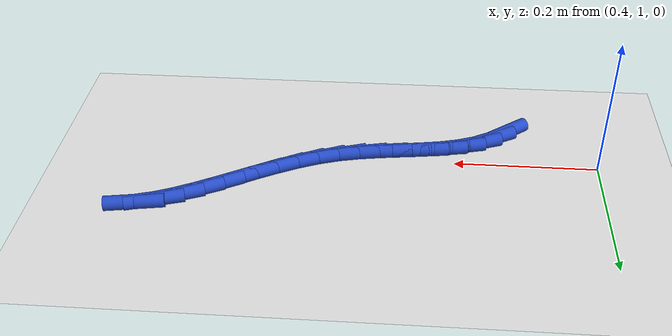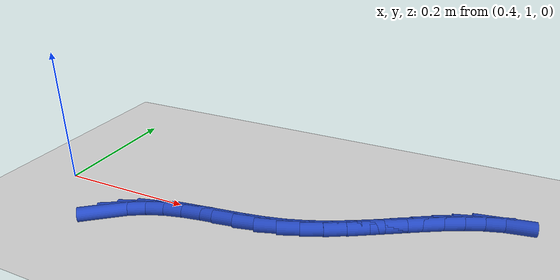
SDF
<sdf version="1.6">
 <world name="default">
  <model name="ground_plane">
   <static>1</static>
   <link name="link">
    <collision name="collision">
     <geometry><plane><normal>0 0 1</normal><size>100 100</size></plane></geometry>
     <surface><friction><ode><mu>100</mu><mu2>50</mu2></ode></friction></surface>
    </collision>
    <visual name="visual">
     <cast_shadows>0</cast_shadows>
     <geometry><plane><normal>0 0 1</normal><size>100 100</size></plane></geometry>
     <material>
      <script><uri>file://media/materials/scripts/gazebo.material</uri><name>Gazebo/WhiteGlow</name></script>
     </material>
    </visual>
   </link>
  </model>
  <model name="line">
   <link name="link_39">
    <pose>0.5282742211020827 0.9340241092727407 0.01 0 1.57 0.6616137770099053</pose>
    <collision name="collision">
     <geometry><cylinder><radius>0.01</radius><length>0.08</length></cylinder></geometry>
    </collision>
    <visual name="visual">
     <material>
      <script><name>Gazebo/Blue</name><uri>file://media/materials/scripts/gazebo.material</uri></script>
     </material>
     <geometry><cylinder><radius>0.01</radius><length>0.08</length></cylinder></geometry>
    </visual>
   </link>
   <link name="link_40">
    <pose>0.5486551541093719 0.949894619017821 0.01 0 1.57 0.5128230388341847</pose>
    <collision name="collision">
     <geometry><cylinder><radius>0.01</radius><length>0.08</length></cylinder></geometry>
    </collision>
    <visual name="visual">
     <material>
      <script><name>Gazebo/Blue</name><uri>file://media/materials/scripts/gazebo.material</uri></script>
     </material>
     <geometry><cylinder><radius>0.01</radius><length>0.08</length></cylinder></geometry>
    </visual>
   </link>
   <link name="link_41">
    <pose>0.5709427631343595 0.9624441231962502 0.01 0 1.57 0.3589645401083616</pose>
    <collision name="collision">
     <geometry><cylinder><radius>0.01</radius><length>0.08</length></cylinder></geometry>
    </collision>
    <visual name="visual">
     <material>
      <script><name>Gazebo/Blue</name><uri>file://media/materials/scripts/gazebo.material</uri></script>
     </material>
     <geometry><cylinder><radius>0.01</radius><length>0.08</length></cylinder></geometry>
    </visual>
   </link>
   <link name="link_42">
    <pose>0.5952317053174303 0.9715578479868802 0.01 0 1.57 0.24285056643595912</pose>
    <collision name="collision">
     <geometry><cylinder><radius>0.01</radius><length>0.08</length></cylinder></geometry>
    </collision>
    <visual name="visual">
     <material>
      <script><name>Gazebo/Blue</name><uri>file://media/materials/scripts/gazebo.material</uri></script>
     </material>
     <geometry><cylinder><radius>0.01</radius><length>0.08</length></cylinder></geometry>
    </visual>
   </link>
   <link name="link_43">
    <pose>0.6212062965085824 0.9779927957067559 0.01 0 1.57 0.16911727179858327</pose>
    <collision name="collision">
     <geometry><cylinder><radius>0.01</radius><length>0.08</length></cylinder></geometry>
    </collision>
    <visual name="visual">
     <material>
      <script><name>Gazebo/Blue</name><uri>file://media/materials/scripts/gazebo.material</uri></script>
     </material>
     <geometry><cylinder><radius>0.01</radius><length>0.08</length></cylinder></geometry>
    </visual>
   </link>
   <link name="link_44">
    <pose>0.6484829469061665 0.9826502352338055 0.01 0 1.57 0.1333129068355688</pose>
    <collision name="collision">
     <geometry><cylinder><radius>0.01</radius><length>0.08</length></cylinder></geometry>
    </collision>
    <visual name="visual">
     <material>
      <script><name>Gazebo/Blue</name><uri>file://media/materials/scripts/gazebo.material</uri></script>
     </material>
     <geometry><cylinder><radius>0.01</radius><length>0.08</length></cylinder></geometry>
    </visual>
   </link>
   <link name="link_45">
    <pose>0.6766780667085345 0.9864314354459578 0.01 0 1.57 0.1317157286446269</pose>
    <collision name="collision">
     <geometry><cylinder><radius>0.01</radius><length>0.08</length></cylinder></geometry>
    </collision>
    <visual name="visual">
     <material>
      <script><name>Gazebo/Blue</name><uri>file://media/materials/scripts/gazebo.material</uri></script>
     </material>
     <geometry><cylinder><radius>0.01</radius><length>0.08</length></cylinder></geometry>
    </visual>
   </link>
   <link name="link_46">
    <pose>0.7054080661140368 0.9902376652211419 0.01 0 1.57 0.16241798433288324</pose>
    <collision name="collision">
     <geometry><cylinder><radius>0.01</radius><length>0.08</length></cylinder></geometry>
    </collision>
    <visual name="visual">
     <material>
      <script><name>Gazebo/Blue</name><uri>file://media/materials/scripts/gazebo.material</uri></script>
     </material>
     <geometry><cylinder><radius>0.01</radius><length>0.08</length></cylinder></geometry>
    </visual>
   </link>
   <link name="link_47">
    <pose>0.7342893553210256 0.9949701934372872 0.01 0 1.57 0.22510107729409648</pose>
    <collision name="collision">
     <geometry><cylinder><radius>0.01</radius><length>0.08</length></cylinder></geometry>
    </collision>
    <visual name="visual">
     <material>
      <script><name>Gazebo/Blue</name><uri>file://media/materials/scripts/gazebo.material</uri></script>
     </material>
     <geometry><cylinder><radius>0.01</radius><length>0.08</length></cylinder></geometry>
    </visual>
   </link>
   <link name="link_48">
    <pose>0.7629383445278517 1.001530288972322 0.01 0 1.57 0.31553224103313365</pose>
    <collision name="collision">
     <geometry><cylinder><radius>0.01</radius><length>0.08</length></cylinder></geometry>
    </collision>
    <visual name="visual">
     <material>
      <script><name>Gazebo/Blue</name><uri>file://media/materials/scripts/gazebo.material</uri></script>
     </material>
     <geometry><cylinder><radius>0.01</radius><length>0.08</length></cylinder></geometry>
    </visual>
   </link>
   <link name="link_49">
    <pose>0.7910083011799036 1.010693397880971 0.01 0 1.57 0.39926055064568844</pose>
    <collision name="collision">
     <geometry><cylinder><radius>0.01</radius><length>0.08</length></cylinder></geometry>
    </collision>
    <visual name="visual">
     <material>
      <script><name>Gazebo/Blue</name><uri>file://media/materials/scripts/gazebo.material</uri></script>
     </material>
     <geometry><cylinder><radius>0.01</radius><length>0.08</length></cylinder></geometry>
    </visual>
   </link>
   <link name="link_50">
    <pose>0.8184363620899946 1.0222658964121054 0.01 0 1.57 0.46097882196133094</pose>
    <collision name="collision">
     <geometry><cylinder><radius>0.01</radius><length>0.08</length></cylinder></geometry>
    </collision>
    <visual name="visual">
     <material>
      <script><name>Gazebo/Blue</name><uri>file://media/materials/scripts/gazebo.material</uri></script>
     </material>
     <geometry><cylinder><radius>0.01</radius><length>0.08</length></cylinder></geometry>
    </visual>
   </link>
   <link name="link_51">
    <pose>0.8452915267695528 1.035604009532319 0.01 0 1.57 0.5017899645064001</pose>
    <collision name="collision">
     <geometry><cylinder><radius>0.01</radius><length>0.08</length></cylinder></geometry>
    </collision>
    <visual name="visual">
     <material>
      <script><name>Gazebo/Blue</name><uri>file://media/materials/scripts/gazebo.material</uri></script>
     </material>
     <geometry><cylinder><radius>0.01</radius><length>0.08</length></cylinder></geometry>
    </visual>
   </link>
   <link name="link_52">
    <pose>0.8716435226847515 1.050061477125119 0.01 0 1.57 0.5226281974443435</pose>
    <collision name="collision">
     <geometry><cylinder><radius>0.01</radius><length>0.08</length></cylinder></geometry>
    </collision>
    <visual name="visual">
     <material>
      <script><name>Gazebo/Blue</name><uri>file://media/materials/scripts/gazebo.material</uri></script>
     </material>
     <geometry><cylinder><radius>0.01</radius><length>0.08</length></cylinder></geometry>
    </visual>
   </link>
   <link name="link_53">
    <pose>0.8975620773017633 1.0649920390740137 0.01 0 1.57 0.5236956788854874</pose>
    <collision name="collision">
     <geometry><cylinder><radius>0.01</radius><length>0.08</length></cylinder></geometry>
    </collision>
    <visual name="visual">
     <material>
      <script><name>Gazebo/Blue</name><uri>file://media/materials/scripts/gazebo.material</uri></script>
     </material>
     <geometry><cylinder><radius>0.01</radius><length>0.08</length></cylinder></geometry>
    </visual>
   </link>
   <link name="link_54">
    <pose>0.9231169180867622 1.0797494352625119 0.01 0 1.57 0.5041947069022281</pose>
    <collision name="collision">
     <geometry><cylinder><radius>0.01</radius><length>0.08</length></cylinder></geometry>
    </collision>
    <visual name="visual">
     <material>
      <script><name>Gazebo/Blue</name><uri>file://media/materials/scripts/gazebo.material</uri></script>
     </material>
     <geometry><cylinder><radius>0.01</radius><length>0.08</length></cylinder></geometry>
    </visual>
   </link>
   <link name="link_55">
    <pose>0.94837777250592 1.093687405574121 0.01 0 1.57 0.46217625050367384</pose>
    <collision name="collision">
     <geometry><cylinder><radius>0.01</radius><length>0.08</length></cylinder></geometry>
    </collision>
    <visual name="visual">
     <material>
      <script><name>Gazebo/Blue</name><uri>file://media/materials/scripts/gazebo.material</uri></script>
     </material>
     <geometry><cylinder><radius>0.01</radius><length>0.08</length></cylinder></geometry>
    </visual>
   </link>
   <link name="link_56">
    <pose>0.9734143680254107 1.1061596898923496 0.01 0 1.57 0.3945449288853501</pose>
    <collision name="collision">
     <geometry><cylinder><radius>0.01</radius><length>0.08</length></cylinder></geometry>
    </collision>
    <visual name="visual">
     <material>
      <script><name>Gazebo/Blue</name><uri>file://media/materials/scripts/gazebo.material</uri></script>
     </material>
     <geometry><cylinder><radius>0.01</radius><length>0.08</length></cylinder></geometry>
    </visual>
   </link>
   <link name="link_57">
    <pose>0.9982964321114068 1.1165200281007057 0.01 0 1.57 0.29747469028885454</pose>
    <collision name="collision">
     <geometry><cylinder><radius>0.01</radius><length>0.08</length></cylinder></geometry>
    </collision>
    <visual name="visual">
     <material>
      <script><name>Gazebo/Blue</name><uri>file://media/materials/scripts/gazebo.material</uri></script>
     </material>
     <geometry><cylinder><radius>0.01</radius><length>0.08</length></cylinder></geometry>
    </visual>
   </link>
   <link name="link_58">
    <pose>1.0230936922300813 1.1241221600826972 0.01 0 1.57 0.16778983937189812</pose>
    <collision name="collision">
     <geometry><cylinder><radius>0.01</radius><length>0.08</length></cylinder></geometry>
    </collision>
    <visual name="visual">
     <material>
      <script><name>Gazebo/Blue</name><uri>file://media/materials/scripts/gazebo.material</uri></script>
     </material>
     <geometry><cylinder><radius>0.01</radius><length>0.08</length></cylinder></geometry>
    </visual>
   </link>
  </model>
 </world>
</sdf>
